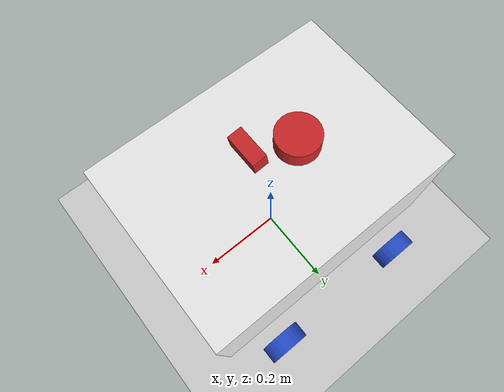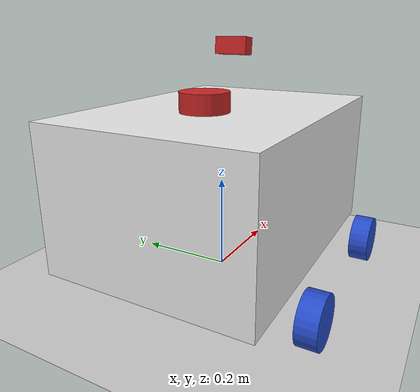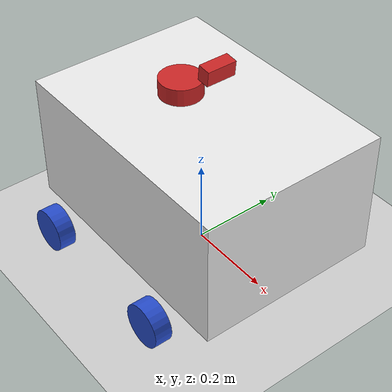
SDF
<sdf version="1.9">
 <world name="empty">
  <physics name="1ms" type="ignored">
   <max_step_size>0.001</max_step_size>
   <real_time_factor>1</real_time_factor>
   <real_time_update_rate>1000</real_time_update_rate>
  </physics>
  <plugin name="gz::sim::systems::Physics" filename="gz-sim-physics-system"/>
  <plugin name="gz::sim::systems::UserCommands" filename="gz-sim-user-commands-system"/>
  <plugin name="gz::sim::systems::SceneBroadcaster" filename="gz-sim-scene-broadcaster-system"/>
  <plugin name="gz::sim::systems::Sensors" filename="gz-sim-sensors-system">
   <render_engine>ogre2</render_engine>
  </plugin>
  <plugin name="gz::sim::systems::Contact" filename="gz-sim-contact-system"/>
  <gravity>0 0 -9.8</gravity>
  <magnetic_field>6e-06 2.3e-05 -4.2e-05</magnetic_field>
  <atmosphere type="adiabatic"/>
  <scene><ambient>0.4 0.4 0.4 1</ambient><background>0.7 0.7 0.7 1</background><shadows>true</shadows></scene>
  <model name="ground_plane">
   <static>true</static>
   <link name="link">
    <collision name="collision">
     <geometry><plane><normal>0 0 1</normal><size>100 100</size></plane></geometry>
    </collision>
    <visual name="visual">
     <geometry><plane><normal>0 0 1</normal><size>100 100</size></plane></geometry>
     <material>
      <ambient>0.8 0.8 0.8 1</ambient>
      <diffuse>0.8 0.8 0.8 1</diffuse>
      <specular>0.8 0.8 0.8 1</specular>
     </material>
    </visual>
    <inertial>
     <mass>1</mass>
     <inertia><ixx>1</ixx><ixy>0</ixy><ixz>0</ixz><iyy>1</iyy><iyz>0</iyz><izz>1</izz></inertia>
    </inertial>
   </link>
  </model>
  <model name="mybot_2wd">
   <link name="base_link">
    <inertial>
     <pose>-0.002222 0 0.16619 0 -0 0</pose>
     <mass>3.1499999999999999</mass>
     <inertia>
      <ixx>0.073874300000000004</ixx>
      <ixy>0</ixy>
      <ixz>0.00114667</ixz>
      <iyy>0.115949</iyy>
      <iyz>0</iyz>
      <izz>0.13900699999999999</izz>
     </inertia>
    </inertial>
    <collision name="base_link_fixed_joint_lump__chassis_collision">
     <pose>0 0 0.16 0 0 0</pose>
     <geometry><box><size>0.6 0.44 0.3</size></box></geometry>
    </collision>
    <collision name="base_link_fixed_joint_lump__imu_link_collision_1">
     <pose>0 0 0.21 0 0 0</pose>
     <geometry><box><size>0.03 0.03 0.01</size></box></geometry>
    </collision>
    <collision name="base_link_fixed_joint_lump__laser_frame_collision_2">
     <pose>-0.07000000000000001 0 0.33 0 0 0</pose>
     <geometry>
      <cylinder><length>0.040000000000000001</length><radius>0.050000000000000003</radius></cylinder>
     </geometry>
    </collision>
    <visual name="base_link_fixed_joint_lump__chassis_visual">
     <pose>0 0 0.16 0 0 0</pose>
     <geometry><box><size>0.6 0.44 0.3</size></box></geometry>
     <material>
      <script><name>Gazebo/White</name><uri>file://media/materials/scripts/gazebo.material</uri></script>
      <diffuse>1 1 1 1</diffuse>
      <ambient>1 1 1 1</ambient>
     </material>
    </visual>
    <visual name="base_link_fixed_joint_lump__camera_link_visual_1">
     <pose>0.05 0 0.43 0 0.11 0</pose>
     <geometry><box><size>0.03 0.07 0.035</size></box></geometry>
     <material>
      <script><name>Gazebo/Red</name><uri>file://media/materials/scripts/gazebo.material</uri></script>
      <diffuse>1 0 0 1</diffuse>
      <ambient>1 0 0 1</ambient>
     </material>
    </visual>
    <visual name="base_link_fixed_joint_lump__imu_link_visual_2">
     <pose>0 0 0.21 0 0 0</pose>
     <geometry><box><size>0.03 0.03 0.01</size></box></geometry>
     <material>
      <script><name>Gazebo/Blue</name><uri>file://media/materials/scripts/gazebo.material</uri></script>
      <diffuse>0 0 1 1</diffuse>
      <ambient>0 0 1 1</ambient>
     </material>
    </visual>
    <visual name="base_link_fixed_joint_lump__laser_frame_visual_3">
     <pose>-0.07000000000000001 0 0.33 0 0 0</pose>
     <geometry>
      <cylinder><length>0.040000000000000001</length><radius>0.050000000000000003</radius></cylinder>
     </geometry>
     <material>
      <script><name>Gazebo/Red</name><uri>file://media/materials/scripts/gazebo.material</uri></script>
      <diffuse>1 0 0 1</diffuse>
      <ambient>1 0 0 1</ambient>
     </material>
    </visual>
    <sensor name="camera" type="camera">
     <pose>0.05 0 0.43 0 0.11 0</pose>
     <topic>camera/image_raw</topic>
     <update_rate>10</update_rate>
     <enable_metrics>false</enable_metrics>
     <camera>
      <horizontal_fov>1.0469999999999999</horizontal_fov>
      <image><width>640</width><height>480</height><format>RGB_INT8</format><anti_aliasing>4</anti_aliasing></image>
      <camera_info_topic>__default__</camera_info_topic>
      <triggered>false</triggered>
      <clip><near>0.10000000000000001</near><far>10</far></clip>
      <save enabled="false"><path>__default__</path></save>
      <visibility_mask>4294967295</visibility_mask>
      <noise><type>none</type><mean>0</mean><stddev>0</stddev></noise>
      <distortion><k1>0</k1><k2>0</k2><k3>0</k3><p1>0</p1><p2>0</p2><center>0.5 0.5</center></distortion>
      <lens>
       <type>stereographic</type>
       <scale_to_hfov>true</scale_to_hfov>
       <cutoff_angle>1.5708</cutoff_angle>
       <env_texture_size>256</env_texture_size>
      </lens>
     </camera>
    </sensor>
    <sensor name="camera_depth" type="depth">
     <pose>0.05 0 0.43 0 0.11 0</pose>
     <update_rate>10</update_rate>
     <camera>
      <horizontal_fov>1.047</horizontal_fov>
      <image><width>640</width><height>480</height><format>R_FLOAT32</format></image>
      <clip><near>0.1</near><far>5.0</far></clip>
     </camera>
     <topic>camera/depth/image_raw</topic>
     <point_cloud><topic>camera/depth/points</topic><frame_id>camera_depth</frame_id></point_cloud>
    </sensor>
    <sensor name="imu_sensor" type="imu">
     <pose>0 0 0.21 0 -0 0</pose>
     <topic>__default__</topic>
     <update_rate>50</update_rate>
     <enable_metrics>false</enable_metrics>
     <imu>
      <orientation_reference_frame>
       <localization>CUSTOM</localization>
       <custom_rpy>0 0 0</custom_rpy>
       <grav_dir_x>1 0 0</grav_dir_x>
      </orientation_reference_frame>
      <angular_velocity>
       <x>
        <noise type="none">
         <mean>0</mean>
         <stddev>0</stddev>
         <bias_mean>0</bias_mean>
         <bias_stddev>0</bias_stddev>
         <dynamic_bias_stddev>0</dynamic_bias_stddev>
         <dynamic_bias_correlation_time>0</dynamic_bias_correlation_time>
         <precision>0</precision>
        </noise>
       </x>
       <y>
        <noise type="none">
         <mean>0</mean>
         <stddev>0</stddev>
         <bias_mean>0</bias_mean>
         <bias_stddev>0</bias_stddev>
         <dynamic_bias_stddev>0</dynamic_bias_stddev>
         <dynamic_bias_correlation_time>0</dynamic_bias_correlation_time>
         <precision>0</precision>
        </noise>
       </y>
       <z>
        <noise type="none">
         <mean>0</mean>
         <stddev>0</stddev>
         <bias_mean>0</bias_mean>
         <bias_stddev>0</bias_stddev>
         <dynamic_bias_stddev>0</dynamic_bias_stddev>
         <dynamic_bias_correlation_time>0</dynamic_bias_correlation_time>
         <precision>0</precision>
        </noise>
       </z>
      </angular_velocity>
      <linear_acceleration>
       <x>
        <noise type="none">
         <mean>0</mean>
         <stddev>0</stddev>
         <bias_mean>0</bias_mean>
         <bias_stddev>0</bias_stddev>
         <dynamic_bias_stddev>0</dynamic_bias_stddev>
         <dynamic_bias_correlation_time>0</dynamic_bias_correlation_time>
         <precision>0</precision>
        </noise>
       </x>
       <y>
        <noise type="none">
         <mean>0</mean>
         <stddev>0</stddev>
         <bias_mean>0</bias_mean>
         <bias_stddev>0</bias_stddev>
         <dynamic_bias_stddev>0</dynamic_bias_stddev>
         <dynamic_bias_correlation_time>0</dynamic_bias_correlation_time>
         <precision>0</precision>
        </noise>
       </y>
       <z>
        <noise type="none">
         <mean>0</mean>
         <stddev>0</stddev>
         <bias_mean>0</bias_mean>
         <bias_stddev>0</bias_stddev>
         <dynamic_bias_stddev>0</dynamic_bias_stddev>
         <dynamic_bias_correlation_time>0</dynamic_bias_correlation_time>
         <precision>0</precision>
        </noise>
       </z>
      </linear_acceleration>
      <enable_orientation>true</enable_orientation>
     </imu>
    </sensor>
    <sensor name="laser" type="gpu_lidar">
     <pose>-0.07 0 0.33 0 -0 0</pose>
     <topic>scan</topic>
     <update_rate>10</update_rate>
     <enable_metrics>false</enable_metrics>
     <lidar>
      <scan>
       <horizontal>
        <samples>360</samples>
        <resolution>1</resolution>
        <min_angle>-3.1400000000000001</min_angle>
        <max_angle>3.1400000000000001</max_angle>
       </horizontal>
       <vertical>
        <samples>1</samples>
        <min_angle>0</min_angle>
        <max_angle>0</max_angle>
        <resolution>1</resolution>
       </vertical>
      </scan>
      <range><min>0.29999999999999999</min><max>12</max><resolution>0.01</resolution></range>
      <noise><type>none</type><mean>0</mean><stddev>0</stddev></noise>
      <visibility_mask>4294967295</visibility_mask>
     </lidar>
    </sensor>
   </link>
   <joint name="left_front_wheel_joint" type="revolute">
    <parent>base_link</parent>
    <child>left_front_wheel</child>
    <axis>
     <xyz>0 0 1</xyz>
     <limit>
      <lower>-10000000000000000</lower>
      <upper>10000000000000000</upper>
      <effort>inf</effort>
      <velocity>inf</velocity>
      <stiffness>100000000</stiffness>
      <dissipation>1</dissipation>
     </limit>
     <dynamics>
      <spring_reference>0</spring_reference>
      <spring_stiffness>0</spring_stiffness>
      <damping>0</damping>
      <friction>0</friction>
     </dynamics>
    </axis>
   </joint>
   <link name="left_front_wheel">
    <pose>0.18 0.275 0 -1.5707 -0 -0</pose>
    <inertial>
     <mass>0.20000000000000001</mass>
     <inertia>
      <ixx>0.000151667</ixx>
      <ixy>0</ixy>
      <ixz>0</ixz>
      <iyy>0.000151667</iyy>
      <iyz>0</iyz>
      <izz>0.00025000000000000001</izz>
     </inertia>
    </inertial>
    <collision name="left_front_wheel_collision">
     <geometry>
      <cylinder><length>0.040000000000000001</length><radius>0.050000000000000003</radius></cylinder>
     </geometry>
    </collision>
    <visual name="left_front_wheel_visual">
     <geometry>
      <cylinder><length>0.040000000000000001</length><radius>0.050000000000000003</radius></cylinder>
     </geometry>
     <material>
      <script><name>Gazebo/Blue</name><uri>file://media/materials/scripts/gazebo.material</uri></script>
      <diffuse>0.25 0.25 1 1</diffuse>
      <ambient>0.25 0.25 1 1</ambient>
     </material>
    </visual>
   </link>
   <joint name="left_rear_wheel_joint" type="revolute">
    <parent>base_link</parent>
    <child>left_rear_wheel</child>
    <axis>
     <xyz>0 0 1</xyz>
     <limit>
      <lower>-10000000000000000</lower>
      <upper>10000000000000000</upper>
      <effort>inf</effort>
      <velocity>inf</velocity>
      <stiffness>100000000</stiffness>
      <dissipation>1</dissipation>
     </limit>
     <dynamics>
      <spring_reference>0</spring_reference>
      <spring_stiffness>0</spring_stiffness>
      <damping>0</damping>
      <friction>0</friction>
     </dynamics>
    </axis>
   </joint>
   <link name="left_rear_wheel">
    <pose>-0.18 0.275 0 -1.5707 0 0</pose>
    <inertial>
     <mass>0.20000000000000001</mass>
     <inertia>
      <ixx>0.000151667</ixx>
      <ixy>0</ixy>
      <ixz>0</ixz>
      <iyy>0.000151667</iyy>
      <iyz>0</iyz>
      <izz>0.00025000000000000001</izz>
     </inertia>
    </inertial>
    <collision name="left_rear_wheel_collision">
     <geometry>
      <cylinder><length>0.040000000000000001</length><radius>0.050000000000000003</radius></cylinder>
     </geometry>
     <surface><friction><ode><mu>0.001</mu><mu2>0.001</mu2></ode></friction></surface>
    </collision>
    <visual name="left_rear_wheel_visual">
     <geometry>
      <cylinder><length>0.040000000000000001</length><radius>0.050000000000000003</radius></cylinder>
     </geometry>
     <material>
      <script><name>Gazebo/Blue</name><uri>file://media/materials/scripts/gazebo.material</uri></script>
      <diffuse>0.25 0.25 1 1</diffuse>
      <ambient>0.25 0.25 1 1</ambient>
     </material>
    </visual>
   </link>
   <joint name="right_front_wheel_joint" type="revolute">
    <parent>base_link</parent>
    <child>right_front_wheel</child>
    <axis>
     <xyz>0 0 -1</xyz>
     <limit>
      <lower>-10000000000000000</lower>
      <upper>10000000000000000</upper>
      <effort>inf</effort>
      <velocity>inf</velocity>
      <stiffness>100000000</stiffness>
      <dissipation>1</dissipation>
     </limit>
     <dynamics>
      <spring_reference>0</spring_reference>
      <spring_stiffness>0</spring_stiffness>
      <damping>0</damping>
      <friction>0</friction>
     </dynamics>
    </axis>
   </joint>
   <link name="right_front_wheel">
    <pose>0.18 -0.275 0 1.5707 -0 0</pose>
    <inertial>
     <mass>0.20000000000000001</mass>
     <inertia>
      <ixx>0.000151667</ixx>
      <ixy>0</ixy>
      <ixz>0</ixz>
      <iyy>0.000151667</iyy>
      <iyz>0</iyz>
      <izz>0.00025000000000000001</izz>
     </inertia>
    </inertial>
    <collision name="right_front_wheel_collision">
     <geometry>
      <cylinder><length>0.040000000000000001</length><radius>0.050000000000000003</radius></cylinder>
     </geometry>
    </collision>
    <visual name="right_front_wheel_visual">
     <geometry>
      <cylinder><length>0.040000000000000001</length><radius>0.050000000000000003</radius></cylinder>
     </geometry>
     <material>
      <script><name>Gazebo/Blue</name><uri>file://media/materials/scripts/gazebo.material</uri></script>
      <diffuse>0.25 0.25 1 1</diffuse>
      <ambient>0.25 0.25 1 1</ambient>
     </material>
    </visual>
   </link>
   <joint name="right_rear_wheel_joint" type="revolute">
    <parent>base_link</parent>
    <child>right_rear_wheel</child>
    <axis>
     <xyz>0 0 -1</xyz>
     <limit>
      <lower>-10000000000000000</lower>
      <upper>10000000000000000</upper>
      <effort>inf</effort>
      <velocity>inf</velocity>
      <stiffness>100000000</stiffness>
      <dissipation>1</dissipation>
     </limit>
     <dynamics>
      <spring_reference>0</spring_reference>
      <spring_stiffness>0</spring_stiffness>
      <damping>0</damping>
      <friction>0</friction>
     </dynamics>
    </axis>
   </joint>
   <link name="right_rear_wheel">
    <pose>-0.18 -0.275 0 1.5707 -0 0</pose>
    <inertial>
     <mass>0.20000000000000001</mass>
     <inertia>
      <ixx>0.000151667</ixx>
      <ixy>0</ixy>
      <ixz>0</ixz>
      <iyy>0.000151667</iyy>
      <iyz>0</iyz>
      <izz>0.00025000000000000001</izz>
     </inertia>
    </inertial>
    <collision name="right_rear_wheel_collision">
     <geometry>
      <cylinder><length>0.040000000000000001</length><radius>0.050000000000000003</radius></cylinder>
     </geometry>
     <surface><friction><ode><mu>0.001</mu><mu2>0.001</mu2></ode></friction></surface>
    </collision>
    <visual name="right_rear_wheel_visual">
     <geometry>
      <cylinder><length>0.040000000000000001</length><radius>0.050000000000000003</radius></cylinder>
     </geometry>
     <material>
      <script><name>Gazebo/Blue</name><uri>file://media/materials/scripts/gazebo.material</uri></script>
      <diffuse>0.25 0.25 1 1</diffuse>
      <ambient>0.25 0.25 1 1</ambient>
     </material>
    </visual>
   </link>
   <plugin name="gz_ros2_control::GazeboSimROS2ControlPlugin" filename="libgz_ros2_control-system.so">
    <parameters>/home/gizmoros2/ros2_ws/install/mybot_2wd/share/mybot_2wd/config/my_controllers.yaml</parameters>
    <parameters>/home/gizmoros2/ros2_ws/install/mybot_2wd/share/mybot_2wd/config/gaz_ros2_ctl_use_sim.yaml</parameters>
   </plugin>
   <frame name="base_footprint_joint" attached_to="base_link"/>
   <frame name="base_footprint" attached_to="base_footprint_joint"/>
   <frame name="camera_optical_joint" attached_to="camera_link"><pose>0 0 0 -1.5708 -0 -1.5708</pose></frame>
   <frame name="camera_link_optical" attached_to="camera_optical_joint"/>
   <frame name="camera_joint" attached_to="chassis"><pose>0.05 0 0.27 0 0.11 0</pose></frame>
   <frame name="camera_link" attached_to="camera_joint"/>
   <frame name="imu_joint" attached_to="chassis"><pose>0 0 0.05 0 -0 0</pose></frame>
   <frame name="imu_link" attached_to="imu_joint"/>
   <frame name="laser_joint" attached_to="chassis"><pose>-0.07 0 0.17 0 -0 0</pose></frame>
   <frame name="laser_frame" attached_to="laser_joint"/>
   <frame name="chassis_joint" attached_to="base_link"><pose>0 0 0.16 0 -0 0</pose></frame>
   <frame name="chassis" attached_to="chassis_joint"/>
   <pose>-0 0 0.050001 0 -0 0</pose>
   <static>false</static>
  </model>
  <light name="sun" type="directional">
   <pose>0 0 10 0 -0 0</pose>
   <intensity>1</intensity>
   <direction>-0.5 0.1 -0.9</direction>
   <diffuse>0.8 0.8 0.8 1</diffuse>
   <specular>0.2 0.2 0.2 1</specular>
   <attenuation>
    <range>1000</range>
    <linear>0.01</linear>
    <constant>0.90000000000000002</constant>
    <quadratic>0.001</quadratic>
   </attenuation>
   <spot><inner_angle>0</inner_angle><outer_angle>0</outer_angle><falloff>0</falloff></spot>
  </light>
 </world>
</sdf>
